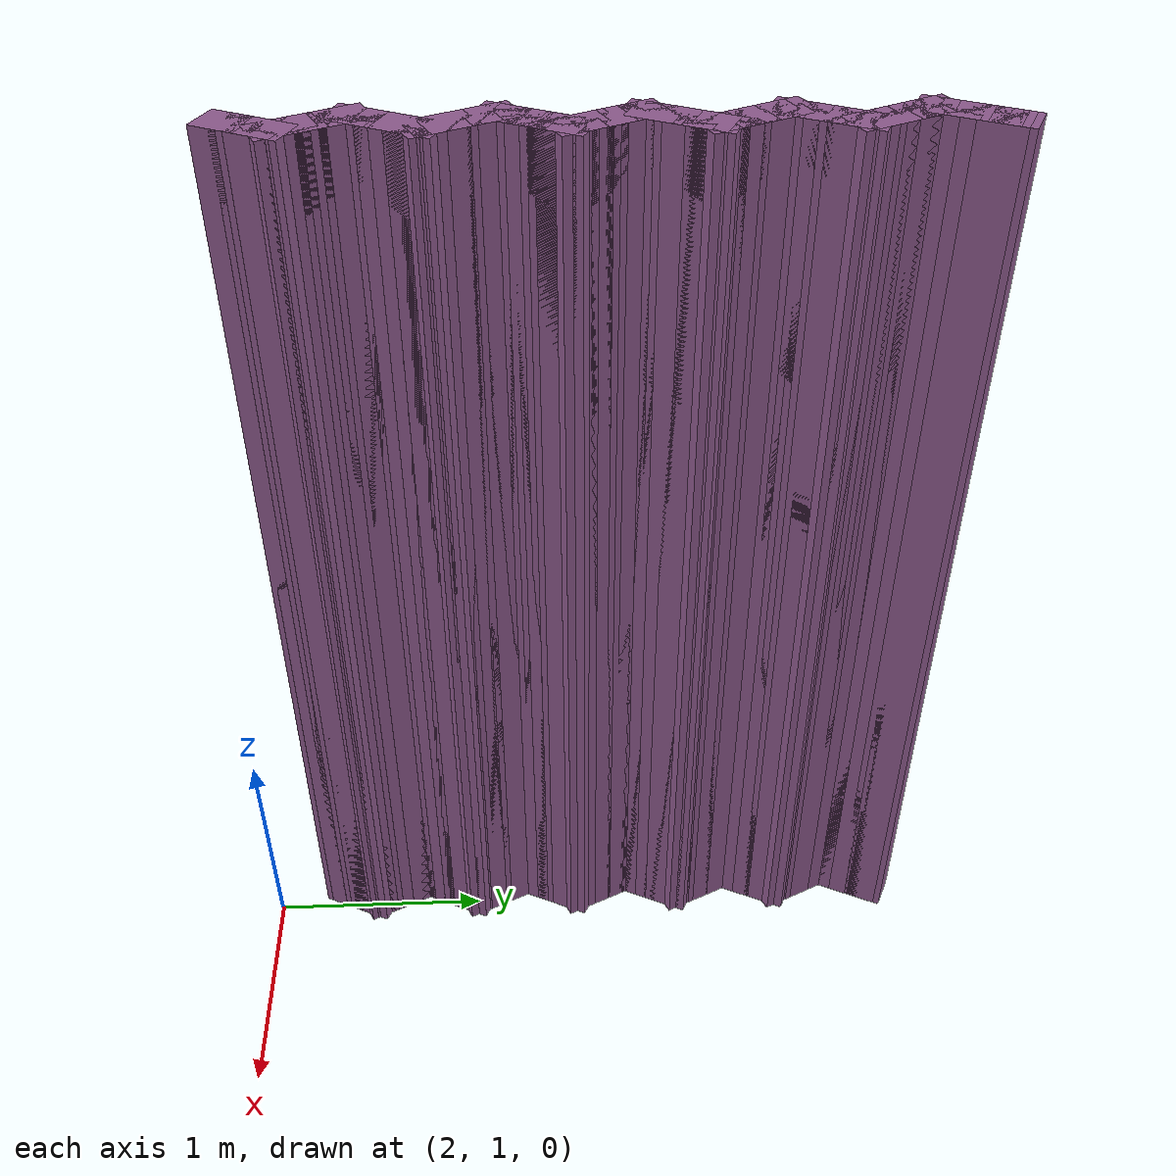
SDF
<sdf version="1.9">
 <world name="p5_serrated">
  <model name="wall_213">
   <static>true</static>
   <pose>1.9220 1.3375 2.0000 0 0 1.12328</pose>
   <link name="link">
    <collision name="c"><geometry><box><size>0.1777 0.1500 4.0000</size></box></geometry></collision>
    <visual name="v">
     <geometry><box><size>0.1777 0.1500 4.0000</size></box></geometry>
     <material><ambient>0.55 0.35 0.55 1</ambient><diffuse>0.55 0.35 0.55 1</diffuse></material>
    </visual>
   </link>
  </model>
  <model name="wall_214">
   <static>true</static>
   <pose>1.9340 1.3625 2.0000 0 0 1.12328</pose>
   <link name="link">
    <collision name="c"><geometry><box><size>0.1777 0.1500 4.0000</size></box></geometry></collision>
    <visual name="v">
     <geometry><box><size>0.1777 0.1500 4.0000</size></box></geometry>
     <material><ambient>0.55 0.35 0.55 1</ambient><diffuse>0.55 0.35 0.55 1</diffuse></material>
    </visual>
   </link>
  </model>
  <model name="wall_215">
   <static>true</static>
   <pose>1.9460 1.3875 2.0000 0 0 1.12328</pose>
   <link name="link">
    <collision name="c"><geometry><box><size>0.1777 0.1500 4.0000</size></box></geometry></collision>
    <visual name="v">
     <geometry><box><size>0.1777 0.1500 4.0000</size></box></geometry>
     <material><ambient>0.55 0.35 0.55 1</ambient><diffuse>0.55 0.35 0.55 1</diffuse></material>
    </visual>
   </link>
  </model>
  <model name="wall_216">
   <static>true</static>
   <pose>1.9580 1.4125 2.0000 0 0 1.12328</pose>
   <link name="link">
    <collision name="c"><geometry><box><size>0.1777 0.1500 4.0000</size></box></geometry></collision>
    <visual name="v">
     <geometry><box><size>0.1777 0.1500 4.0000</size></box></geometry>
     <material><ambient>0.55 0.35 0.55 1</ambient><diffuse>0.55 0.35 0.55 1</diffuse></material>
    </visual>
   </link>
  </model>
  <model name="wall_217">
   <static>true</static>
   <pose>1.9700 1.4375 2.0000 0 0 1.12328</pose>
   <link name="link">
    <collision name="c"><geometry><box><size>0.1777 0.1500 4.0000</size></box></geometry></collision>
    <visual name="v">
     <geometry><box><size>0.1777 0.1500 4.0000</size></box></geometry>
     <material><ambient>0.55 0.35 0.55 1</ambient><diffuse>0.55 0.35 0.55 1</diffuse></material>
    </visual>
   </link>
  </model>
  <model name="wall_218">
   <static>true</static>
   <pose>1.9820 1.4625 2.0000 0 0 1.12328</pose>
   <link name="link">
    <collision name="c"><geometry><box><size>0.1777 0.1500 4.0000</size></box></geometry></collision>
    <visual name="v">
     <geometry><box><size>0.1777 0.1500 4.0000</size></box></geometry>
     <material><ambient>0.55 0.35 0.55 1</ambient><diffuse>0.55 0.35 0.55 1</diffuse></material>
    </visual>
   </link>
  </model>
  <model name="wall_219">
   <static>true</static>
   <pose>1.9940 1.4875 2.0000 0 0 1.12328</pose>
   <link name="link">
    <collision name="c"><geometry><box><size>0.1777 0.1500 4.0000</size></box></geometry></collision>
    <visual name="v">
     <geometry><box><size>0.1777 0.1500 4.0000</size></box></geometry>
     <material><ambient>0.55 0.35 0.55 1</ambient><diffuse>0.55 0.35 0.55 1</diffuse></material>
    </visual>
   </link>
  </model>
  <model name="wall_220">
   <static>true</static>
   <pose>1.9940 1.5125 2.0000 0 0 2.01832</pose>
   <link name="link">
    <collision name="c"><geometry><box><size>0.1777 0.1500 4.0000</size></box></geometry></collision>
    <visual name="v">
     <geometry><box><size>0.1777 0.1500 4.0000</size></box></geometry>
     <material><ambient>0.55 0.35 0.55 1</ambient><diffuse>0.55 0.35 0.55 1</diffuse></material>
    </visual>
   </link>
  </model>
  <model name="wall_221">
   <static>true</static>
   <pose>1.9820 1.5375 2.0000 0 0 2.01832</pose>
   <link name="link">
    <collision name="c"><geometry><box><size>0.1777 0.1500 4.0000</size></box></geometry></collision>
    <visual name="v">
     <geometry><box><size>0.1777 0.1500 4.0000</size></box></geometry>
     <material><ambient>0.55 0.35 0.55 1</ambient><diffuse>0.55 0.35 0.55 1</diffuse></material>
    </visual>
   </link>
  </model>
  <model name="wall_222">
   <static>true</static>
   <pose>1.9700 1.5625 2.0000 0 0 2.01832</pose>
   <link name="link">
    <collision name="c"><geometry><box><size>0.1777 0.1500 4.0000</size></box></geometry></collision>
    <visual name="v">
     <geometry><box><size>0.1777 0.1500 4.0000</size></box></geometry>
     <material><ambient>0.55 0.35 0.55 1</ambient><diffuse>0.55 0.35 0.55 1</diffuse></material>
    </visual>
   </link>
  </model>
  <model name="wall_223">
   <static>true</static>
   <pose>1.9580 1.5875 2.0000 0 0 2.01832</pose>
   <link name="link">
    <collision name="c"><geometry><box><size>0.1777 0.1500 4.0000</size></box></geometry></collision>
    <visual name="v">
     <geometry><box><size>0.1777 0.1500 4.0000</size></box></geometry>
     <material><ambient>0.55 0.35 0.55 1</ambient><diffuse>0.55 0.35 0.55 1</diffuse></material>
    </visual>
   </link>
  </model>
  <model name="wall_224">
   <static>true</static>
   <pose>1.9460 1.6125 2.0000 0 0 2.01832</pose>
   <link name="link">
    <collision name="c"><geometry><box><size>0.1777 0.1500 4.0000</size></box></geometry></collision>
    <visual name="v">
     <geometry><box><size>0.1777 0.1500 4.0000</size></box></geometry>
     <material><ambient>0.55 0.35 0.55 1</ambient><diffuse>0.55 0.35 0.55 1</diffuse></material>
    </visual>
   </link>
  </model>
  <model name="wall_225">
   <static>true</static>
   <pose>1.9340 1.6375 2.0000 0 0 2.01832</pose>
   <link name="link">
    <collision name="c"><geometry><box><size>0.1777 0.1500 4.0000</size></box></geometry></collision>
    <visual name="v">
     <geometry><box><size>0.1777 0.1500 4.0000</size></box></geometry>
     <material><ambient>0.55 0.35 0.55 1</ambient><diffuse>0.55 0.35 0.55 1</diffuse></material>
    </visual>
   </link>
  </model>
  <model name="wall_226">
   <static>true</static>
   <pose>1.9220 1.6625 2.0000 0 0 2.01832</pose>
   <link name="link">
    <collision name="c"><geometry><box><size>0.1777 0.1500 4.0000</size></box></geometry></collision>
    <visual name="v">
     <geometry><box><size>0.1777 0.1500 4.0000</size></box></geometry>
     <material><ambient>0.55 0.35 0.55 1</ambient><diffuse>0.55 0.35 0.55 1</diffuse></material>
    </visual>
   </link>
  </model>
  <model name="wall_227">
   <static>true</static>
   <pose>1.9100 1.6875 2.0000 0 0 2.01832</pose>
   <link name="link">
    <collision name="c"><geometry><box><size>0.1777 0.1500 4.0000</size></box></geometry></collision>
    <visual name="v">
     <geometry><box><size>0.1777 0.1500 4.0000</size></box></geometry>
     <material><ambient>0.55 0.35 0.55 1</ambient><diffuse>0.55 0.35 0.55 1</diffuse></material>
    </visual>
   </link>
  </model>
  <model name="wall_228">
   <static>true</static>
   <pose>1.8980 1.7125 2.0000 0 0 2.01832</pose>
   <link name="link">
    <collision name="c"><geometry><box><size>0.1777 0.1500 4.0000</size></box></geometry></collision>
    <visual name="v">
     <geometry><box><size>0.1777 0.1500 4.0000</size></box></geometry>
     <material><ambient>0.55 0.35 0.55 1</ambient><diffuse>0.55 0.35 0.55 1</diffuse></material>
    </visual>
   </link>
  </model>
  <model name="wall_229">
   <static>true</static>
   <pose>1.8860 1.7375 2.0000 0 0 2.01832</pose>
   <link name="link">
    <collision name="c"><geometry><box><size>0.1777 0.1500 4.0000</size></box></geometry></collision>
    <visual name="v">
     <geometry><box><size>0.1777 0.1500 4.0000</size></box></geometry>
     <material><ambient>0.55 0.35 0.55 1</ambient><diffuse>0.55 0.35 0.55 1</diffuse></material>
    </visual>
   </link>
  </model>
  <model name="wall_230">
   <static>true</static>
   <pose>1.8860 1.7625 2.0000 0 0 1.12328</pose>
   <link name="link">
    <collision name="c"><geometry><box><size>0.1777 0.1500 4.0000</size></box></geometry></collision>
    <visual name="v">
     <geometry><box><size>0.1777 0.1500 4.0000</size></box></geometry>
     <material><ambient>0.55 0.35 0.55 1</ambient><diffuse>0.55 0.35 0.55 1</diffuse></material>
    </visual>
   </link>
  </model>
  <model name="wall_231">
   <static>true</static>
   <pose>1.8980 1.7875 2.0000 0 0 1.12328</pose>
   <link name="link">
    <collision name="c"><geometry><box><size>0.1777 0.1500 4.0000</size></box></geometry></collision>
    <visual name="v">
     <geometry><box><size>0.1777 0.1500 4.0000</size></box></geometry>
     <material><ambient>0.55 0.35 0.55 1</ambient><diffuse>0.55 0.35 0.55 1</diffuse></material>
    </visual>
   </link>
  </model>
  <model name="wall_232">
   <static>true</static>
   <pose>1.9100 1.8125 2.0000 0 0 1.12328</pose>
   <link name="link">
    <collision name="c"><geometry><box><size>0.1777 0.1500 4.0000</size></box></geometry></collision>
    <visual name="v">
     <geometry><box><size>0.1777 0.1500 4.0000</size></box></geometry>
     <material><ambient>0.55 0.35 0.55 1</ambient><diffuse>0.55 0.35 0.55 1</diffuse></material>
    </visual>
   </link>
  </model>
  <model name="wall_233">
   <static>true</static>
   <pose>1.9220 1.8375 2.0000 0 0 1.12328</pose>
   <link name="link">
    <collision name="c"><geometry><box><size>0.1777 0.1500 4.0000</size></box></geometry></collision>
    <visual name="v">
     <geometry><box><size>0.1777 0.1500 4.0000</size></box></geometry>
     <material><ambient>0.55 0.35 0.55 1</ambient><diffuse>0.55 0.35 0.55 1</diffuse></material>
    </visual>
   </link>
  </model>
  <model name="wall_234">
   <static>true</static>
   <pose>1.9340 1.8625 2.0000 0 0 1.12328</pose>
   <link name="link">
    <collision name="c"><geometry><box><size>0.1777 0.1500 4.0000</size></box></geometry></collision>
    <visual name="v">
     <geometry><box><size>0.1777 0.1500 4.0000</size></box></geometry>
     <material><ambient>0.55 0.35 0.55 1</ambient><diffuse>0.55 0.35 0.55 1</diffuse></material>
    </visual>
   </link>
  </model>
  <model name="wall_235">
   <static>true</static>
   <pose>1.9460 1.8875 2.0000 0 0 1.12328</pose>
   <link name="link">
    <collision name="c"><geometry><box><size>0.1777 0.1500 4.0000</size></box></geometry></collision>
    <visual name="v">
     <geometry><box><size>0.1777 0.1500 4.0000</size></box></geometry>
     <material><ambient>0.55 0.35 0.55 1</ambient><diffuse>0.55 0.35 0.55 1</diffuse></material>
    </visual>
   </link>
  </model>
  <model name="wall_236">
   <static>true</static>
   <pose>1.9580 1.9125 2.0000 0 0 1.12328</pose>
   <link name="link">
    <collision name="c"><geometry><box><size>0.1777 0.1500 4.0000</size></box></geometry></collision>
    <visual name="v">
     <geometry><box><size>0.1777 0.1500 4.0000</size></box></geometry>
     <material><ambient>0.55 0.35 0.55 1</ambient><diffuse>0.55 0.35 0.55 1</diffuse></material>
    </visual>
   </link>
  </model>
  <model name="wall_237">
   <static>true</static>
   <pose>1.9700 1.9375 2.0000 0 0 1.12328</pose>
   <link name="link">
    <collision name="c"><geometry><box><size>0.1777 0.1500 4.0000</size></box></geometry></collision>
    <visual name="v">
     <geometry><box><size>0.1777 0.1500 4.0000</size></box></geometry>
     <material><ambient>0.55 0.35 0.55 1</ambient><diffuse>0.55 0.35 0.55 1</diffuse></material>
    </visual>
   </link>
  </model>
  <model name="wall_238">
   <static>true</static>
   <pose>1.9820 1.9625 2.0000 0 0 1.12328</pose>
   <link name="link">
    <collision name="c"><geometry><box><size>0.1777 0.1500 4.0000</size></box></geometry></collision>
    <visual name="v">
     <geometry><box><size>0.1777 0.1500 4.0000</size></box></geometry>
     <material><ambient>0.55 0.35 0.55 1</ambient><diffuse>0.55 0.35 0.55 1</diffuse></material>
    </visual>
   </link>
  </model>
  <model name="wall_239">
   <static>true</static>
   <pose>1.9940 1.9875 2.0000 0 0 1.12328</pose>
   <link name="link">
    <collision name="c"><geometry><box><size>0.1777 0.1500 4.0000</size></box></geometry></collision>
    <visual name="v">
     <geometry><box><size>0.1777 0.1500 4.0000</size></box></geometry>
     <material><ambient>0.55 0.35 0.55 1</ambient><diffuse>0.55 0.35 0.55 1</diffuse></material>
    </visual>
   </link>
  </model>
  <model name="wall_240">
   <static>true</static>
   <pose>1.9940 2.0125 2.0000 0 0 2.01832</pose>
   <link name="link">
    <collision name="c"><geometry><box><size>0.1777 0.1500 4.0000</size></box></geometry></collision>
    <visual name="v">
     <geometry><box><size>0.1777 0.1500 4.0000</size></box></geometry>
     <material><ambient>0.55 0.35 0.55 1</ambient><diffuse>0.55 0.35 0.55 1</diffuse></material>
    </visual>
   </link>
  </model>
  <model name="wall_241">
   <static>true</static>
   <pose>1.9820 2.0375 2.0000 0 0 2.01832</pose>
   <link name="link">
    <collision name="c"><geometry><box><size>0.1777 0.1500 4.0000</size></box></geometry></collision>
    <visual name="v">
     <geometry><box><size>0.1777 0.1500 4.0000</size></box></geometry>
     <material><ambient>0.55 0.35 0.55 1</ambient><diffuse>0.55 0.35 0.55 1</diffuse></material>
    </visual>
   </link>
  </model>
  <model name="wall_242">
   <static>true</static>
   <pose>1.9700 2.0625 2.0000 0 0 2.01832</pose>
   <link name="link">
    <collision name="c"><geometry><box><size>0.1777 0.1500 4.0000</size></box></geometry></collision>
    <visual name="v">
     <geometry><box><size>0.1777 0.1500 4.0000</size></box></geometry>
     <material><ambient>0.55 0.35 0.55 1</ambient><diffuse>0.55 0.35 0.55 1</diffuse></material>
    </visual>
   </link>
  </model>
  <model name="wall_243">
   <static>true</static>
   <pose>1.9580 2.0875 2.0000 0 0 2.01832</pose>
   <link name="link">
    <collision name="c"><geometry><box><size>0.1777 0.1500 4.0000</size></box></geometry></collision>
    <visual name="v">
     <geometry><box><size>0.1777 0.1500 4.0000</size></box></geometry>
     <material><ambient>0.55 0.35 0.55 1</ambient><diffuse>0.55 0.35 0.55 1</diffuse></material>
    </visual>
   </link>
  </model>
  <model name="wall_244">
   <static>true</static>
   <pose>1.9460 2.1125 2.0000 0 0 2.01832</pose>
   <link name="link">
    <collision name="c"><geometry><box><size>0.1777 0.1500 4.0000</size></box></geometry></collision>
    <visual name="v">
     <geometry><box><size>0.1777 0.1500 4.0000</size></box></geometry>
     <material><ambient>0.55 0.35 0.55 1</ambient><diffuse>0.55 0.35 0.55 1</diffuse></material>
    </visual>
   </link>
  </model>
  <model name="wall_245">
   <static>true</static>
   <pose>1.9340 2.1375 2.0000 0 0 2.01832</pose>
   <link name="link">
    <collision name="c"><geometry><box><size>0.1777 0.1500 4.0000</size></box></geometry></collision>
    <visual name="v">
     <geometry><box><size>0.1777 0.1500 4.0000</size></box></geometry>
     <material><ambient>0.55 0.35 0.55 1</ambient><diffuse>0.55 0.35 0.55 1</diffuse></material>
    </visual>
   </link>
  </model>
  <model name="wall_246">
   <static>true</static>
   <pose>1.9220 2.1625 2.0000 0 0 2.01832</pose>
   <link name="link">
    <collision name="c"><geometry><box><size>0.1777 0.1500 4.0000</size></box></geometry></collision>
    <visual name="v">
     <geometry><box><size>0.1777 0.1500 4.0000</size></box></geometry>
     <material><ambient>0.55 0.35 0.55 1</ambient><diffuse>0.55 0.35 0.55 1</diffuse></material>
    </visual>
   </link>
  </model>
  <model name="wall_247">
   <static>true</static>
   <pose>1.9100 2.1875 2.0000 0 0 2.01832</pose>
   <link name="link">
    <collision name="c"><geometry><box><size>0.1777 0.1500 4.0000</size></box></geometry></collision>
    <visual name="v">
     <geometry><box><size>0.1777 0.1500 4.0000</size></box></geometry>
     <material><ambient>0.55 0.35 0.55 1</ambient><diffuse>0.55 0.35 0.55 1</diffuse></material>
    </visual>
   </link>
  </model>
  <model name="wall_248">
   <static>true</static>
   <pose>1.8980 2.2125 2.0000 0 0 2.01832</pose>
   <link name="link">
    <collision name="c"><geometry><box><size>0.1777 0.1500 4.0000</size></box></geometry></collision>
    <visual name="v">
     <geometry><box><size>0.1777 0.1500 4.0000</size></box></geometry>
     <material><ambient>0.55 0.35 0.55 1</ambient><diffuse>0.55 0.35 0.55 1</diffuse></material>
    </visual>
   </link>
  </model>
  <model name="wall_249">
   <static>true</static>
   <pose>1.8860 2.2375 2.0000 0 0 2.01832</pose>
   <link name="link">
    <collision name="c"><geometry><box><size>0.1777 0.1500 4.0000</size></box></geometry></collision>
    <visual name="v">
     <geometry><box><size>0.1777 0.1500 4.0000</size></box></geometry>
     <material><ambient>0.55 0.35 0.55 1</ambient><diffuse>0.55 0.35 0.55 1</diffuse></material>
    </visual>
   </link>
  </model>
  <model name="wall_250">
   <static>true</static>
   <pose>1.8860 2.2625 2.0000 0 0 1.12328</pose>
   <link name="link">
    <collision name="c"><geometry><box><size>0.1777 0.1500 4.0000</size></box></geometry></collision>
    <visual name="v">
     <geometry><box><size>0.1777 0.1500 4.0000</size></box></geometry>
     <material><ambient>0.55 0.35 0.55 1</ambient><diffuse>0.55 0.35 0.55 1</diffuse></material>
    </visual>
   </link>
  </model>
  <model name="wall_251">
   <static>true</static>
   <pose>1.8980 2.2875 2.0000 0 0 1.12328</pose>
   <link name="link">
    <collision name="c"><geometry><box><size>0.1777 0.1500 4.0000</size></box></geometry></collision>
    <visual name="v">
     <geometry><box><size>0.1777 0.1500 4.0000</size></box></geometry>
     <material><ambient>0.55 0.35 0.55 1</ambient><diffuse>0.55 0.35 0.55 1</diffuse></material>
    </visual>
   </link>
  </model>
  <model name="wall_252">
   <static>true</static>
   <pose>1.9100 2.3125 2.0000 0 0 1.12328</pose>
   <link name="link">
    <collision name="c"><geometry><box><size>0.1777 0.1500 4.0000</size></box></geometry></collision>
    <visual name="v">
     <geometry><box><size>0.1777 0.1500 4.0000</size></box></geometry>
     <material><ambient>0.55 0.35 0.55 1</ambient><diffuse>0.55 0.35 0.55 1</diffuse></material>
    </visual>
   </link>
  </model>
  <model name="wall_253">
   <static>true</static>
   <pose>1.9220 2.3375 2.0000 0 0 1.12328</pose>
   <link name="link">
    <collision name="c"><geometry><box><size>0.1777 0.1500 4.0000</size></box></geometry></collision>
    <visual name="v">
     <geometry><box><size>0.1777 0.1500 4.0000</size></box></geometry>
     <material><ambient>0.55 0.35 0.55 1</ambient><diffuse>0.55 0.35 0.55 1</diffuse></material>
    </visual>
   </link>
  </model>
  <model name="wall_254">
   <static>true</static>
   <pose>1.9340 2.3625 2.0000 0 0 1.12328</pose>
   <link name="link">
    <collision name="c"><geometry><box><size>0.1777 0.1500 4.0000</size></box></geometry></collision>
    <visual name="v">
     <geometry><box><size>0.1777 0.1500 4.0000</size></box></geometry>
     <material><ambient>0.55 0.35 0.55 1</ambient><diffuse>0.55 0.35 0.55 1</diffuse></material>
    </visual>
   </link>
  </model>
  <model name="wall_255">
   <static>true</static>
   <pose>1.9460 2.3875 2.0000 0 0 1.12328</pose>
   <link name="link">
    <collision name="c"><geometry><box><size>0.1777 0.1500 4.0000</size></box></geometry></collision>
    <visual name="v">
     <geometry><box><size>0.1777 0.1500 4.0000</size></box></geometry>
     <material><ambient>0.55 0.35 0.55 1</ambient><diffuse>0.55 0.35 0.55 1</diffuse></material>
    </visual>
   </link>
  </model>
  <model name="wall_256">
   <static>true</static>
   <pose>1.9580 2.4125 2.0000 0 0 1.12328</pose>
   <link name="link">
    <collision name="c"><geometry><box><size>0.1777 0.1500 4.0000</size></box></geometry></collision>
    <visual name="v">
     <geometry><box><size>0.1777 0.1500 4.0000</size></box></geometry>
     <material><ambient>0.55 0.35 0.55 1</ambient><diffuse>0.55 0.35 0.55 1</diffuse></material>
    </visual>
   </link>
  </model>
  <model name="wall_257">
   <static>true</static>
   <pose>1.9700 2.4375 2.0000 0 0 1.12328</pose>
   <link name="link">
    <collision name="c"><geometry><box><size>0.1777 0.1500 4.0000</size></box></geometry></collision>
    <visual name="v">
     <geometry><box><size>0.1777 0.1500 4.0000</size></box></geometry>
     <material><ambient>0.55 0.35 0.55 1</ambient><diffuse>0.55 0.35 0.55 1</diffuse></material>
    </visual>
   </link>
  </model>
  <model name="wall_258">
   <static>true</static>
   <pose>1.9820 2.4625 2.0000 0 0 1.12328</pose>
   <link name="link">
    <collision name="c"><geometry><box><size>0.1777 0.1500 4.0000</size></box></geometry></collision>
    <visual name="v">
     <geometry><box><size>0.1777 0.1500 4.0000</size></box></geometry>
     <material><ambient>0.55 0.35 0.55 1</ambient><diffuse>0.55 0.35 0.55 1</diffuse></material>
    </visual>
   </link>
  </model>
  <model name="wall_259">
   <static>true</static>
   <pose>1.9940 2.4875 2.0000 0 0 1.12328</pose>
   <link name="link">
    <collision name="c"><geometry><box><size>0.1777 0.1500 4.0000</size></box></geometry></collision>
    <visual name="v">
     <geometry><box><size>0.1777 0.1500 4.0000</size></box></geometry>
     <material><ambient>0.55 0.35 0.55 1</ambient><diffuse>0.55 0.35 0.55 1</diffuse></material>
    </visual>
   </link>
  </model>
  <model name="wall_260">
   <static>true</static>
   <pose>1.9940 2.5125 2.0000 0 0 2.01832</pose>
   <link name="link">
    <collision name="c"><geometry><box><size>0.1777 0.1500 4.0000</size></box></geometry></collision>
    <visual name="v">
     <geometry><box><size>0.1777 0.1500 4.0000</size></box></geometry>
     <material><ambient>0.55 0.35 0.55 1</ambient><diffuse>0.55 0.35 0.55 1</diffuse></material>
    </visual>
   </link>
  </model>
  <model name="wall_261">
   <static>true</static>
   <pose>1.9820 2.5375 2.0000 0 0 2.01832</pose>
   <link name="link">
    <collision name="c"><geometry><box><size>0.1777 0.1500 4.0000</size></box></geometry></collision>
    <visual name="v">
     <geometry><box><size>0.1777 0.1500 4.0000</size></box></geometry>
     <material><ambient>0.55 0.35 0.55 1</ambient><diffuse>0.55 0.35 0.55 1</diffuse></material>
    </visual>
   </link>
  </model>
  <model name="wall_262">
   <static>true</static>
   <pose>1.9700 2.5625 2.0000 0 0 2.01832</pose>
   <link name="link">
    <collision name="c"><geometry><box><size>0.1777 0.1500 4.0000</size></box></geometry></collision>
    <visual name="v">
     <geometry><box><size>0.1777 0.1500 4.0000</size></box></geometry>
     <material><ambient>0.55 0.35 0.55 1</ambient><diffuse>0.55 0.35 0.55 1</diffuse></material>
    </visual>
   </link>
  </model>
  <model name="wall_263">
   <static>true</static>
   <pose>1.9580 2.5875 2.0000 0 0 2.01832</pose>
   <link name="link">
    <collision name="c"><geometry><box><size>0.1777 0.1500 4.0000</size></box></geometry></collision>
    <visual name="v">
     <geometry><box><size>0.1777 0.1500 4.0000</size></box></geometry>
     <material><ambient>0.55 0.35 0.55 1</ambient><diffuse>0.55 0.35 0.55 1</diffuse></material>
    </visual>
   </link>
  </model>
  <model name="wall_264">
   <static>true</static>
   <pose>1.9460 2.6125 2.0000 0 0 2.01832</pose>
   <link name="link">
    <collision name="c"><geometry><box><size>0.1777 0.1500 4.0000</size></box></geometry></collision>
    <visual name="v">
     <geometry><box><size>0.1777 0.1500 4.0000</size></box></geometry>
     <material><ambient>0.55 0.35 0.55 1</ambient><diffuse>0.55 0.35 0.55 1</diffuse></material>
    </visual>
   </link>
  </model>
  <model name="wall_265">
   <static>true</static>
   <pose>1.9340 2.6375 2.0000 0 0 2.01832</pose>
   <link name="link">
    <collision name="c"><geometry><box><size>0.1777 0.1500 4.0000</size></box></geometry></collision>
    <visual name="v">
     <geometry><box><size>0.1777 0.1500 4.0000</size></box></geometry>
     <material><ambient>0.55 0.35 0.55 1</ambient><diffuse>0.55 0.35 0.55 1</diffuse></material>
    </visual>
   </link>
  </model>
  <model name="wall_266">
   <static>true</static>
   <pose>1.9220 2.6625 2.0000 0 0 2.01832</pose>
   <link name="link">
    <collision name="c"><geometry><box><size>0.1777 0.1500 4.0000</size></box></geometry></collision>
    <visual name="v">
     <geometry><box><size>0.1777 0.1500 4.0000</size></box></geometry>
     <material><ambient>0.55 0.35 0.55 1</ambient><diffuse>0.55 0.35 0.55 1</diffuse></material>
    </visual>
   </link>
  </model>
  <model name="wall_267">
   <static>true</static>
   <pose>1.9100 2.6875 2.0000 0 0 2.01832</pose>
   <link name="link">
    <collision name="c"><geometry><box><size>0.1777 0.1500 4.0000</size></box></geometry></collision>
    <visual name="v">
     <geometry><box><size>0.1777 0.1500 4.0000</size></box></geometry>
     <material><ambient>0.55 0.35 0.55 1</ambient><diffuse>0.55 0.35 0.55 1</diffuse></material>
    </visual>
   </link>
  </model>
  <model name="wall_268">
   <static>true</static>
   <pose>1.8980 2.7125 2.0000 0 0 2.01832</pose>
   <link name="link">
    <collision name="c"><geometry><box><size>0.1777 0.1500 4.0000</size></box></geometry></collision>
    <visual name="v">
     <geometry><box><size>0.1777 0.1500 4.0000</size></box></geometry>
     <material><ambient>0.55 0.35 0.55 1</ambient><diffuse>0.55 0.35 0.55 1</diffuse></material>
    </visual>
   </link>
  </model>
  <model name="wall_269">
   <static>true</static>
   <pose>1.8860 2.7375 2.0000 0 0 2.01832</pose>
   <link name="link">
    <collision name="c"><geometry><box><size>0.1777 0.1500 4.0000</size></box></geometry></collision>
    <visual name="v">
     <geometry><box><size>0.1777 0.1500 4.0000</size></box></geometry>
     <material><ambient>0.55 0.35 0.55 1</ambient><diffuse>0.55 0.35 0.55 1</diffuse></material>
    </visual>
   </link>
  </model>
  <model name="wall_270">
   <static>true</static>
   <pose>1.8860 2.7625 2.0000 0 0 1.12328</pose>
   <link name="link">
    <collision name="c"><geometry><box><size>0.1777 0.1500 4.0000</size></box></geometry></collision>
    <visual name="v">
     <geometry><box><size>0.1777 0.1500 4.0000</size></box></geometry>
     <material><ambient>0.55 0.35 0.55 1</ambient><diffuse>0.55 0.35 0.55 1</diffuse></material>
    </visual>
   </link>
  </model>
  <model name="wall_271">
   <static>true</static>
   <pose>1.8980 2.7875 2.0000 0 0 1.12328</pose>
   <link name="link">
    <collision name="c"><geometry><box><size>0.1777 0.1500 4.0000</size></box></geometry></collision>
    <visual name="v">
     <geometry><box><size>0.1777 0.1500 4.0000</size></box></geometry>
     <material><ambient>0.55 0.35 0.55 1</ambient><diffuse>0.55 0.35 0.55 1</diffuse></material>
    </visual>
   </link>
  </model>
  <model name="wall_272">
   <static>true</static>
   <pose>1.9100 2.8125 2.0000 0 0 1.12328</pose>
   <link name="link">
    <collision name="c"><geometry><box><size>0.1777 0.1500 4.0000</size></box></geometry></collision>
    <visual name="v">
     <geometry><box><size>0.1777 0.1500 4.0000</size></box></geometry>
     <material><ambient>0.55 0.35 0.55 1</ambient><diffuse>0.55 0.35 0.55 1</diffuse></material>
    </visual>
   </link>
  </model>
  <model name="wall_273">
   <static>true</static>
   <pose>1.9220 2.8375 2.0000 0 0 1.12328</pose>
   <link name="link">
    <collision name="c"><geometry><box><size>0.1777 0.1500 4.0000</size></box></geometry></collision>
    <visual name="v">
     <geometry><box><size>0.1777 0.1500 4.0000</size></box></geometry>
     <material><ambient>0.55 0.35 0.55 1</ambient><diffuse>0.55 0.35 0.55 1</diffuse></material>
    </visual>
   </link>
  </model>
  <model name="wall_274">
   <static>true</static>
   <pose>1.9340 2.8625 2.0000 0 0 1.12328</pose>
   <link name="link">
    <collision name="c"><geometry><box><size>0.1777 0.1500 4.0000</size></box></geometry></collision>
    <visual name="v">
     <geometry><box><size>0.1777 0.1500 4.0000</size></box></geometry>
     <material><ambient>0.55 0.35 0.55 1</ambient><diffuse>0.55 0.35 0.55 1</diffuse></material>
    </visual>
   </link>
  </model>
  <model name="wall_275">
   <static>true</static>
   <pose>1.9460 2.8875 2.0000 0 0 1.12328</pose>
   <link name="link">
    <collision name="c"><geometry><box><size>0.1777 0.1500 4.0000</size></box></geometry></collision>
    <visual name="v">
     <geometry><box><size>0.1777 0.1500 4.0000</size></box></geometry>
     <material><ambient>0.55 0.35 0.55 1</ambient><diffuse>0.55 0.35 0.55 1</diffuse></material>
    </visual>
   </link>
  </model>
  <model name="wall_276">
   <static>true</static>
   <pose>1.9580 2.9125 2.0000 0 0 1.12328</pose>
   <link name="link">
    <collision name="c"><geometry><box><size>0.1777 0.1500 4.0000</size></box></geometry></collision>
    <visual name="v">
     <geometry><box><size>0.1777 0.1500 4.0000</size></box></geometry>
     <material><ambient>0.55 0.35 0.55 1</ambient><diffuse>0.55 0.35 0.55 1</diffuse></material>
    </visual>
   </link>
  </model>
  <model name="wall_277">
   <static>true</static>
   <pose>1.9700 2.9375 2.0000 0 0 1.12328</pose>
   <link name="link">
    <collision name="c"><geometry><box><size>0.1777 0.1500 4.0000</size></box></geometry></collision>
    <visual name="v">
     <geometry><box><size>0.1777 0.1500 4.0000</size></box></geometry>
     <material><ambient>0.55 0.35 0.55 1</ambient><diffuse>0.55 0.35 0.55 1</diffuse></material>
    </visual>
   </link>
  </model>
  <model name="wall_278">
   <static>true</static>
   <pose>1.9820 2.9625 2.0000 0 0 1.12328</pose>
   <link name="link">
    <collision name="c"><geometry><box><size>0.1777 0.1500 4.0000</size></box></geometry></collision>
    <visual name="v">
     <geometry><box><size>0.1777 0.1500 4.0000</size></box></geometry>
     <material><ambient>0.55 0.35 0.55 1</ambient><diffuse>0.55 0.35 0.55 1</diffuse></material>
    </visual>
   </link>
  </model>
  <model name="wall_279">
   <static>true</static>
   <pose>1.9940 2.9875 2.0000 0 0 1.12328</pose>
   <link name="link">
    <collision name="c"><geometry><box><size>0.1777 0.1500 4.0000</size></box></geometry></collision>
    <visual name="v">
     <geometry><box><size>0.1777 0.1500 4.0000</size></box></geometry>
     <material><ambient>0.55 0.35 0.55 1</ambient><diffuse>0.55 0.35 0.55 1</diffuse></material>
    </visual>
   </link>
  </model>
  <model name="wall_280">
   <static>true</static>
   <pose>1.9940 3.0125 2.0000 0 0 2.01832</pose>
   <link name="link">
    <collision name="c"><geometry><box><size>0.1777 0.1500 4.0000</size></box></geometry></collision>
    <visual name="v">
     <geometry><box><size>0.1777 0.1500 4.0000</size></box></geometry>
     <material><ambient>0.55 0.35 0.55 1</ambient><diffuse>0.55 0.35 0.55 1</diffuse></material>
    </visual>
   </link>
  </model>
  <model name="wall_281">
   <static>true</static>
   <pose>1.9820 3.0375 2.0000 0 0 2.01832</pose>
   <link name="link">
    <collision name="c"><geometry><box><size>0.1777 0.1500 4.0000</size></box></geometry></collision>
    <visual name="v">
     <geometry><box><size>0.1777 0.1500 4.0000</size></box></geometry>
     <material><ambient>0.55 0.35 0.55 1</ambient><diffuse>0.55 0.35 0.55 1</diffuse></material>
    </visual>
   </link>
  </model>
  <model name="wall_282">
   <static>true</static>
   <pose>1.9700 3.0625 2.0000 0 0 2.01832</pose>
   <link name="link">
    <collision name="c"><geometry><box><size>0.1777 0.1500 4.0000</size></box></geometry></collision>
    <visual name="v">
     <geometry><box><size>0.1777 0.1500 4.0000</size></box></geometry>
     <material><ambient>0.55 0.35 0.55 1</ambient><diffuse>0.55 0.35 0.55 1</diffuse></material>
    </visual>
   </link>
  </model>
  <model name="wall_283">
   <static>true</static>
   <pose>1.9580 3.0875 2.0000 0 0 2.01832</pose>
   <link name="link">
    <collision name="c"><geometry><box><size>0.1777 0.1500 4.0000</size></box></geometry></collision>
    <visual name="v">
     <geometry><box><size>0.1777 0.1500 4.0000</size></box></geometry>
     <material><ambient>0.55 0.35 0.55 1</ambient><diffuse>0.55 0.35 0.55 1</diffuse></material>
    </visual>
   </link>
  </model>
  <model name="wall_284">
   <static>true</static>
   <pose>1.9460 3.1125 2.0000 0 0 2.01832</pose>
   <link name="link">
    <collision name="c"><geometry><box><size>0.1777 0.1500 4.0000</size></box></geometry></collision>
    <visual name="v">
     <geometry><box><size>0.1777 0.1500 4.0000</size></box></geometry>
     <material><ambient>0.55 0.35 0.55 1</ambient><diffuse>0.55 0.35 0.55 1</diffuse></material>
    </visual>
   </link>
  </model>
  <model name="wall_285">
   <static>true</static>
   <pose>1.9340 3.1375 2.0000 0 0 2.01832</pose>
   <link name="link">
    <collision name="c"><geometry><box><size>0.1777 0.1500 4.0000</size></box></geometry></collision>
    <visual name="v">
     <geometry><box><size>0.1777 0.1500 4.0000</size></box></geometry>
     <material><ambient>0.55 0.35 0.55 1</ambient><diffuse>0.55 0.35 0.55 1</diffuse></material>
    </visual>
   </link>
  </model>
  <model name="wall_286">
   <static>true</static>
   <pose>1.9220 3.1625 2.0000 0 0 2.01832</pose>
   <link name="link">
    <collision name="c"><geometry><box><size>0.1777 0.1500 4.0000</size></box></geometry></collision>
    <visual name="v">
     <geometry><box><size>0.1777 0.1500 4.0000</size></box></geometry>
     <material><ambient>0.55 0.35 0.55 1</ambient><diffuse>0.55 0.35 0.55 1</diffuse></material>
    </visual>
   </link>
  </model>
  <model name="wall_287">
   <static>true</static>
   <pose>1.9100 3.1875 2.0000 0 0 2.01832</pose>
   <link name="link">
    <collision name="c"><geometry><box><size>0.1777 0.1500 4.0000</size></box></geometry></collision>
    <visual name="v">
     <geometry><box><size>0.1777 0.1500 4.0000</size></box></geometry>
     <material><ambient>0.55 0.35 0.55 1</ambient><diffuse>0.55 0.35 0.55 1</diffuse></material>
    </visual>
   </link>
  </model>
  <model name="wall_288">
   <static>true</static>
   <pose>1.8980 3.2125 2.0000 0 0 2.01832</pose>
   <link name="link">
    <collision name="c"><geometry><box><size>0.1777 0.1500 4.0000</size></box></geometry></collision>
    <visual name="v">
     <geometry><box><size>0.1777 0.1500 4.0000</size></box></geometry>
     <material><ambient>0.55 0.35 0.55 1</ambient><diffuse>0.55 0.35 0.55 1</diffuse></material>
    </visual>
   </link>
  </model>
  <model name="wall_289">
   <static>true</static>
   <pose>1.8860 3.2375 2.0000 0 0 2.01832</pose>
   <link name="link">
    <collision name="c"><geometry><box><size>0.1777 0.1500 4.0000</size></box></geometry></collision>
    <visual name="v">
     <geometry><box><size>0.1777 0.1500 4.0000</size></box></geometry>
     <material><ambient>0.55 0.35 0.55 1</ambient><diffuse>0.55 0.35 0.55 1</diffuse></material>
    </visual>
   </link>
  </model>
  <model name="wall_290">
   <static>true</static>
   <pose>1.8860 3.2625 2.0000 0 0 1.12328</pose>
   <link name="link">
    <collision name="c"><geometry><box><size>0.1777 0.1500 4.0000</size></box></geometry></collision>
    <visual name="v">
     <geometry><box><size>0.1777 0.1500 4.0000</size></box></geometry>
     <material><ambient>0.55 0.35 0.55 1</ambient><diffuse>0.55 0.35 0.55 1</diffuse></material>
    </visual>
   </link>
  </model>
  <model name="wall_291">
   <static>true</static>
   <pose>1.8980 3.2875 2.0000 0 0 1.12328</pose>
   <link name="link">
    <collision name="c"><geometry><box><size>0.1777 0.1500 4.0000</size></box></geometry></collision>
    <visual name="v">
     <geometry><box><size>0.1777 0.1500 4.0000</size></box></geometry>
     <material><ambient>0.55 0.35 0.55 1</ambient><diffuse>0.55 0.35 0.55 1</diffuse></material>
    </visual>
   </link>
  </model>
  <model name="wall_292">
   <static>true</static>
   <pose>1.9100 3.3125 2.0000 0 0 1.12328</pose>
   <link name="link">
    <collision name="c"><geometry><box><size>0.1777 0.1500 4.0000</size></box></geometry></collision>
    <visual name="v">
     <geometry><box><size>0.1777 0.1500 4.0000</size></box></geometry>
     <material><ambient>0.55 0.35 0.55 1</ambient><diffuse>0.55 0.35 0.55 1</diffuse></material>
    </visual>
   </link>
  </model>
  <model name="wall_293">
   <static>true</static>
   <pose>1.9220 3.3375 2.0000 0 0 1.12328</pose>
   <link name="link">
    <collision name="c"><geometry><box><size>0.1777 0.1500 4.0000</size></box></geometry></collision>
    <visual name="v">
     <geometry><box><size>0.1777 0.1500 4.0000</size></box></geometry>
     <material><ambient>0.55 0.35 0.55 1</ambient><diffuse>0.55 0.35 0.55 1</diffuse></material>
    </visual>
   </link>
  </model>
  <model name="wall_294">
   <static>true</static>
   <pose>1.9340 3.3625 2.0000 0 0 1.12328</pose>
   <link name="link">
    <collision name="c"><geometry><box><size>0.1777 0.1500 4.0000</size></box></geometry></collision>
    <visual name="v">
     <geometry><box><size>0.1777 0.1500 4.0000</size></box></geometry>
     <material><ambient>0.55 0.35 0.55 1</ambient><diffuse>0.55 0.35 0.55 1</diffuse></material>
    </visual>
   </link>
  </model>
  <model name="wall_295">
   <static>true</static>
   <pose>1.9460 3.3875 2.0000 0 0 1.12328</pose>
   <link name="link">
    <collision name="c"><geometry><box><size>0.1777 0.1500 4.0000</size></box></geometry></collision>
    <visual name="v">
     <geometry><box><size>0.1777 0.1500 4.0000</size></box></geometry>
     <material><ambient>0.55 0.35 0.55 1</ambient><diffuse>0.55 0.35 0.55 1</diffuse></material>
    </visual>
   </link>
  </model>
  <model name="wall_296">
   <static>true</static>
   <pose>1.9580 3.4125 2.0000 0 0 1.12328</pose>
   <link name="link">
    <collision name="c"><geometry><box><size>0.1777 0.1500 4.0000</size></box></geometry></collision>
    <visual name="v">
     <geometry><box><size>0.1777 0.1500 4.0000</size></box></geometry>
     <material><ambient>0.55 0.35 0.55 1</ambient><diffuse>0.55 0.35 0.55 1</diffuse></material>
    </visual>
   </link>
  </model>
  <model name="wall_297">
   <static>true</static>
   <pose>1.9700 3.4375 2.0000 0 0 1.12328</pose>
   <link name="link">
    <collision name="c"><geometry><box><size>0.1777 0.1500 4.0000</size></box></geometry></collision>
    <visual name="v">
     <geometry><box><size>0.1777 0.1500 4.0000</size></box></geometry>
     <material><ambient>0.55 0.35 0.55 1</ambient><diffuse>0.55 0.35 0.55 1</diffuse></material>
    </visual>
   </link>
  </model>
  <model name="wall_298">
   <static>true</static>
   <pose>1.9820 3.4625 2.0000 0 0 1.12328</pose>
   <link name="link">
    <collision name="c"><geometry><box><size>0.1777 0.1500 4.0000</size></box></geometry></collision>
    <visual name="v">
     <geometry><box><size>0.1777 0.1500 4.0000</size></box></geometry>
     <material><ambient>0.55 0.35 0.55 1</ambient><diffuse>0.55 0.35 0.55 1</diffuse></material>
    </visual>
   </link>
  </model>
  <model name="wall_299">
   <static>true</static>
   <pose>1.9940 3.4875 2.0000 0 0 1.12328</pose>
   <link name="link">
    <collision name="c"><geometry><box><size>0.1777 0.1500 4.0000</size></box></geometry></collision>
    <visual name="v">
     <geometry><box><size>0.1777 0.1500 4.0000</size></box></geometry>
     <material><ambient>0.55 0.35 0.55 1</ambient><diffuse>0.55 0.35 0.55 1</diffuse></material>
    </visual>
   </link>
  </model>
  <model name="wall_300">
   <static>true</static>
   <pose>1.9940 3.5125 2.0000 0 0 2.01832</pose>
   <link name="link">
    <collision name="c"><geometry><box><size>0.1777 0.1500 4.0000</size></box></geometry></collision>
    <visual name="v">
     <geometry><box><size>0.1777 0.1500 4.0000</size></box></geometry>
     <material><ambient>0.55 0.35 0.55 1</ambient><diffuse>0.55 0.35 0.55 1</diffuse></material>
    </visual>
   </link>
  </model>
  <model name="wall_301">
   <static>true</static>
   <pose>1.9820 3.5375 2.0000 0 0 2.01832</pose>
   <link name="link">
    <collision name="c"><geometry><box><size>0.1777 0.1500 4.0000</size></box></geometry></collision>
    <visual name="v">
     <geometry><box><size>0.1777 0.1500 4.0000</size></box></geometry>
     <material><ambient>0.55 0.35 0.55 1</ambient><diffuse>0.55 0.35 0.55 1</diffuse></material>
    </visual>
   </link>
  </model>
  <model name="wall_302">
   <static>true</static>
   <pose>1.9700 3.5625 2.0000 0 0 2.01832</pose>
   <link name="link">
    <collision name="c"><geometry><box><size>0.1777 0.1500 4.0000</size></box></geometry></collision>
    <visual name="v">
     <geometry><box><size>0.1777 0.1500 4.0000</size></box></geometry>
     <material><ambient>0.55 0.35 0.55 1</ambient><diffuse>0.55 0.35 0.55 1</diffuse></material>
    </visual>
   </link>
  </model>
  <model name="wall_303">
   <static>true</static>
   <pose>1.9580 3.5875 2.0000 0 0 2.01832</pose>
   <link name="link">
    <collision name="c"><geometry><box><size>0.1777 0.1500 4.0000</size></box></geometry></collision>
    <visual name="v">
     <geometry><box><size>0.1777 0.1500 4.0000</size></box></geometry>
     <material><ambient>0.55 0.35 0.55 1</ambient><diffuse>0.55 0.35 0.55 1</diffuse></material>
    </visual>
   </link>
  </model>
  <model name="wall_304">
   <static>true</static>
   <pose>1.9460 3.6125 2.0000 0 0 2.01832</pose>
   <link name="link">
    <collision name="c"><geometry><box><size>0.1777 0.1500 4.0000</size></box></geometry></collision>
    <visual name="v">
     <geometry><box><size>0.1777 0.1500 4.0000</size></box></geometry>
     <material><ambient>0.55 0.35 0.55 1</ambient><diffuse>0.55 0.35 0.55 1</diffuse></material>
    </visual>
   </link>
  </model>
  <model name="wall_305">
   <static>true</static>
   <pose>1.9340 3.6375 2.0000 0 0 2.01832</pose>
   <link name="link">
    <collision name="c"><geometry><box><size>0.1777 0.1500 4.0000</size></box></geometry></collision>
    <visual name="v">
     <geometry><box><size>0.1777 0.1500 4.0000</size></box></geometry>
     <material><ambient>0.55 0.35 0.55 1</ambient><diffuse>0.55 0.35 0.55 1</diffuse></material>
    </visual>
   </link>
  </model>
  <model name="wall_306">
   <static>true</static>
   <pose>1.9220 3.6625 2.0000 0 0 2.01832</pose>
   <link name="link">
    <collision name="c"><geometry><box><size>0.1777 0.1500 4.0000</size></box></geometry></collision>
    <visual name="v">
     <geometry><box><size>0.1777 0.1500 4.0000</size></box></geometry>
     <material><ambient>0.55 0.35 0.55 1</ambient><diffuse>0.55 0.35 0.55 1</diffuse></material>
    </visual>
   </link>
  </model>
  <model name="wall_307">
   <static>true</static>
   <pose>1.9100 3.6875 2.0000 0 0 2.01832</pose>
   <link name="link">
    <collision name="c"><geometry><box><size>0.1777 0.1500 4.0000</size></box></geometry></collision>
    <visual name="v">
     <geometry><box><size>0.1777 0.1500 4.0000</size></box></geometry>
     <material><ambient>0.55 0.35 0.55 1</ambient><diffuse>0.55 0.35 0.55 1</diffuse></material>
    </visual>
   </link>
  </model>
  <model name="wall_308">
   <static>true</static>
   <pose>1.8980 3.7125 2.0000 0 0 2.01832</pose>
   <link name="link">
    <collision name="c"><geometry><box><size>0.1777 0.1500 4.0000</size></box></geometry></collision>
    <visual name="v">
     <geometry><box><size>0.1777 0.1500 4.0000</size></box></geometry>
     <material><ambient>0.55 0.35 0.55 1</ambient><diffuse>0.55 0.35 0.55 1</diffuse></material>
    </visual>
   </link>
  </model>
  <model name="wall_309">
   <static>true</static>
   <pose>1.8860 3.7375 2.0000 0 0 2.01832</pose>
   <link name="link">
    <collision name="c"><geometry><box><size>0.1777 0.1500 4.0000</size></box></geometry></collision>
    <visual name="v">
     <geometry><box><size>0.1777 0.1500 4.0000</size></box></geometry>
     <material><ambient>0.55 0.35 0.55 1</ambient><diffuse>0.55 0.35 0.55 1</diffuse></material>
    </visual>
   </link>
  </model>
  <model name="wall_310">
   <static>true</static>
   <pose>1.8860 3.7625 2.0000 0 0 1.12328</pose>
   <link name="link">
    <collision name="c"><geometry><box><size>0.1777 0.1500 4.0000</size></box></geometry></collision>
    <visual name="v">
     <geometry><box><size>0.1777 0.1500 4.0000</size></box></geometry>
     <material><ambient>0.55 0.35 0.55 1</ambient><diffuse>0.55 0.35 0.55 1</diffuse></material>
    </visual>
   </link>
  </model>
  <model name="wall_311">
   <static>true</static>
   <pose>1.8980 3.7875 2.0000 0 0 1.12328</pose>
   <link name="link">
    <collision name="c"><geometry><box><size>0.1777 0.1500 4.0000</size></box></geometry></collision>
    <visual name="v">
     <geometry><box><size>0.1777 0.1500 4.0000</size></box></geometry>
     <material><ambient>0.55 0.35 0.55 1</ambient><diffuse>0.55 0.35 0.55 1</diffuse></material>
    </visual>
   </link>
  </model>
  <model name="wall_312">
   <static>true</static>
   <pose>1.9100 3.8125 2.0000 0 0 1.12328</pose>
   <link name="link">
    <collision name="c"><geometry><box><size>0.1777 0.1500 4.0000</size></box></geometry></collision>
    <visual name="v">
     <geometry><box><size>0.1777 0.1500 4.0000</size></box></geometry>
     <material><ambient>0.55 0.35 0.55 1</ambient><diffuse>0.55 0.35 0.55 1</diffuse></material>
    </visual>
   </link>
  </model>
  <model name="wall_313">
   <static>true</static>
   <pose>1.9220 3.8375 2.0000 0 0 1.12328</pose>
   <link name="link">
    <collision name="c"><geometry><box><size>0.1777 0.1500 4.0000</size></box></geometry></collision>
    <visual name="v">
     <geometry><box><size>0.1777 0.1500 4.0000</size></box></geometry>
     <material><ambient>0.55 0.35 0.55 1</ambient><diffuse>0.55 0.35 0.55 1</diffuse></material>
    </visual>
   </link>
  </model>
  <model name="wall_314">
   <static>true</static>
   <pose>1.9340 3.8625 2.0000 0 0 1.12328</pose>
   <link name="link">
    <collision name="c"><geometry><box><size>0.1777 0.1500 4.0000</size></box></geometry></collision>
    <visual name="v">
     <geometry><box><size>0.1777 0.1500 4.0000</size></box></geometry>
     <material><ambient>0.55 0.35 0.55 1</ambient><diffuse>0.55 0.35 0.55 1</diffuse></material>
    </visual>
   </link>
  </model>
  <model name="wall_315">
   <static>true</static>
   <pose>1.9460 3.8875 2.0000 0 0 1.12328</pose>
   <link name="link">
    <collision name="c"><geometry><box><size>0.1777 0.1500 4.0000</size></box></geometry></collision>
    <visual name="v">
     <geometry><box><size>0.1777 0.1500 4.0000</size></box></geometry>
     <material><ambient>0.55 0.35 0.55 1</ambient><diffuse>0.55 0.35 0.55 1</diffuse></material>
    </visual>
   </link>
  </model>
  <model name="wall_316">
   <static>true</static>
   <pose>1.9580 3.9125 2.0000 0 0 1.12328</pose>
   <link name="link">
    <collision name="c"><geometry><box><size>0.1777 0.1500 4.0000</size></box></geometry></collision>
    <visual name="v">
     <geometry><box><size>0.1777 0.1500 4.0000</size></box></geometry>
     <material><ambient>0.55 0.35 0.55 1</ambient><diffuse>0.55 0.35 0.55 1</diffuse></material>
    </visual>
   </link>
  </model>
  <model name="wall_317">
   <static>true</static>
   <pose>1.9700 3.9375 2.0000 0 0 1.12328</pose>
   <link name="link">
    <collision name="c"><geometry><box><size>0.1777 0.1500 4.0000</size></box></geometry></collision>
    <visual name="v">
     <geometry><box><size>0.1777 0.1500 4.0000</size></box></geometry>
     <material><ambient>0.55 0.35 0.55 1</ambient><diffuse>0.55 0.35 0.55 1</diffuse></material>
    </visual>
   </link>
  </model>
  <model name="wall_318">
   <static>true</static>
   <pose>1.9820 3.9625 2.0000 0 0 1.12328</pose>
   <link name="link">
    <collision name="c"><geometry><box><size>0.1777 0.1500 4.0000</size></box></geometry></collision>
    <visual name="v">
     <geometry><box><size>0.1777 0.1500 4.0000</size></box></geometry>
     <material><ambient>0.55 0.35 0.55 1</ambient><diffuse>0.55 0.35 0.55 1</diffuse></material>
    </visual>
   </link>
  </model>
  <model name="wall_319">
   <static>true</static>
   <pose>1.9940 3.9875 2.0000 0 0 1.12328</pose>
   <link name="link">
    <collision name="c"><geometry><box><size>0.1777 0.1500 4.0000</size></box></geometry></collision>
    <visual name="v">
     <geometry><box><size>0.1777 0.1500 4.0000</size></box></geometry>
     <material><ambient>0.55 0.35 0.55 1</ambient><diffuse>0.55 0.35 0.55 1</diffuse></material>
    </visual>
   </link>
  </model>
 </world>
</sdf>
